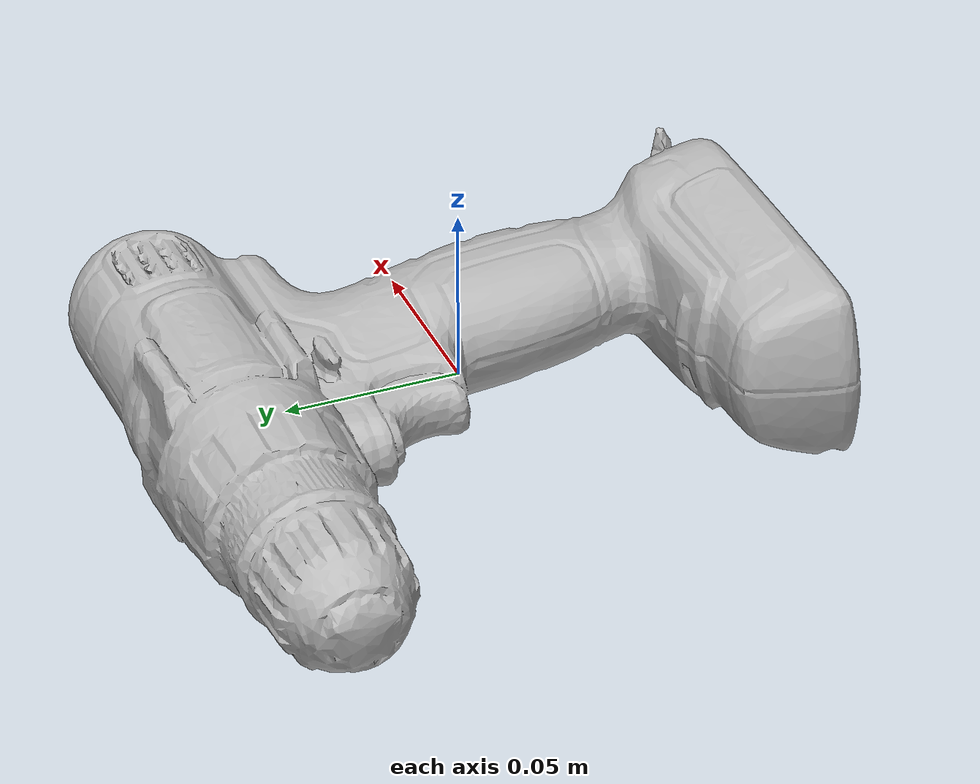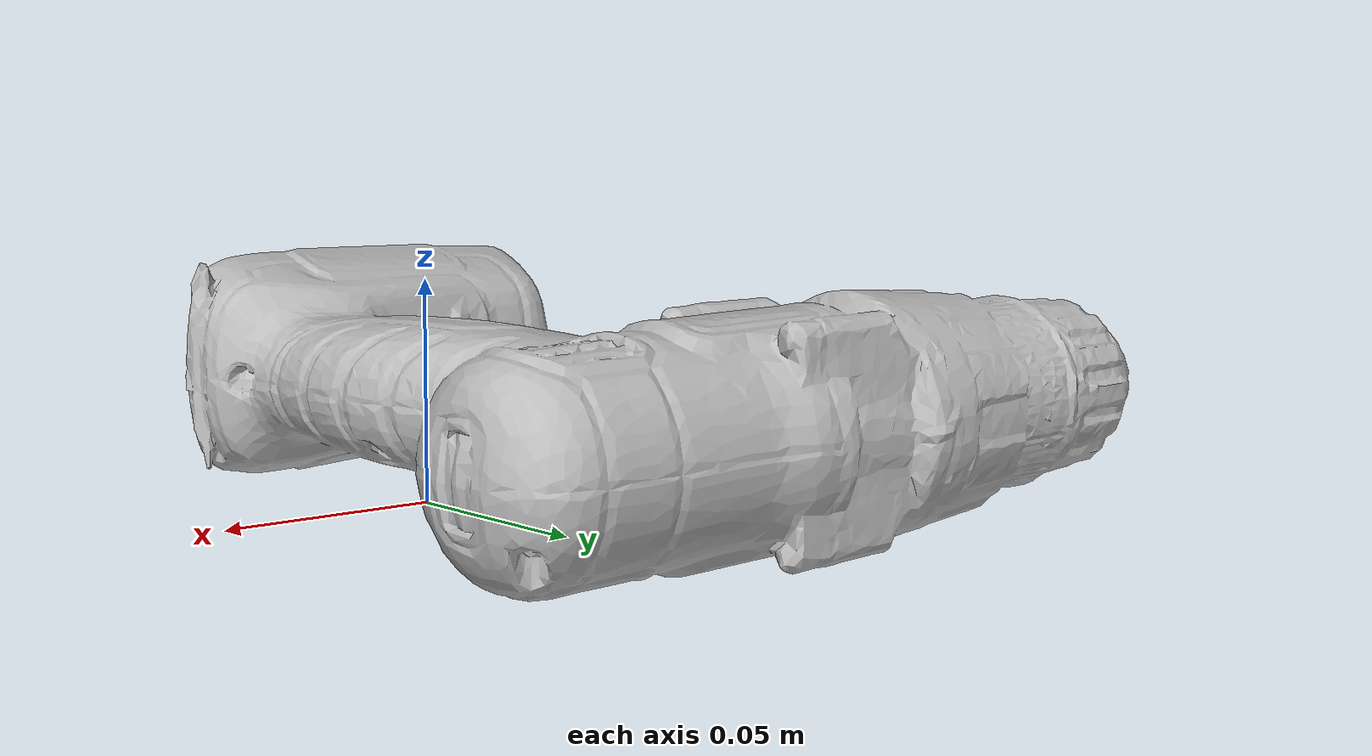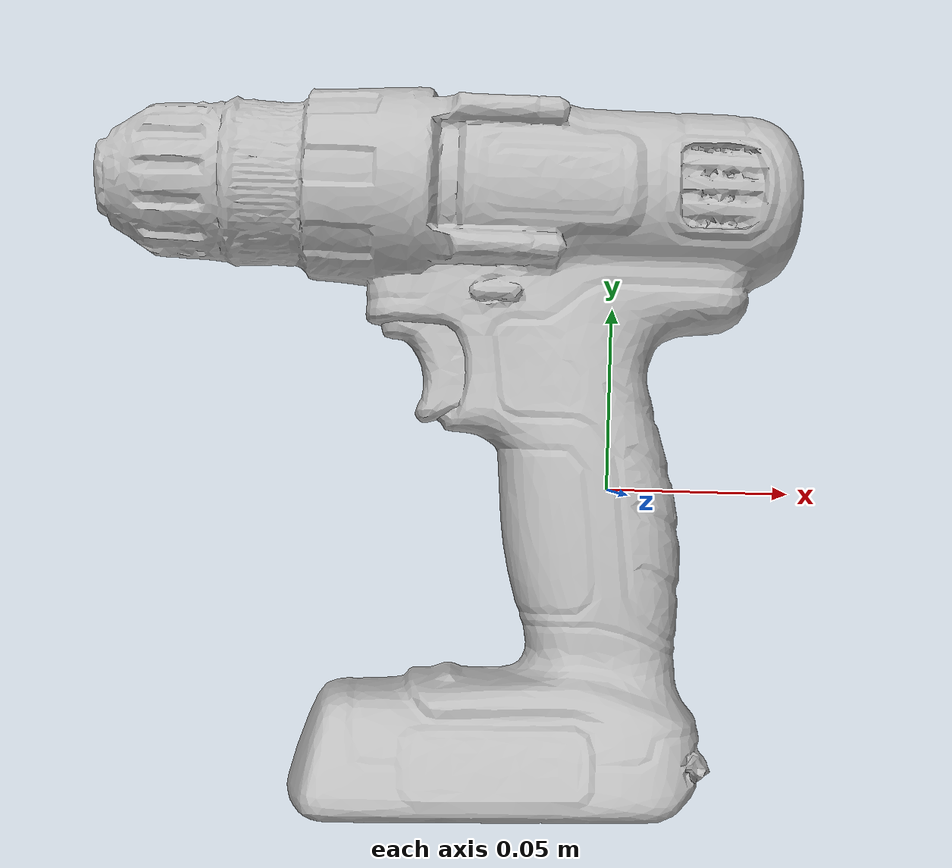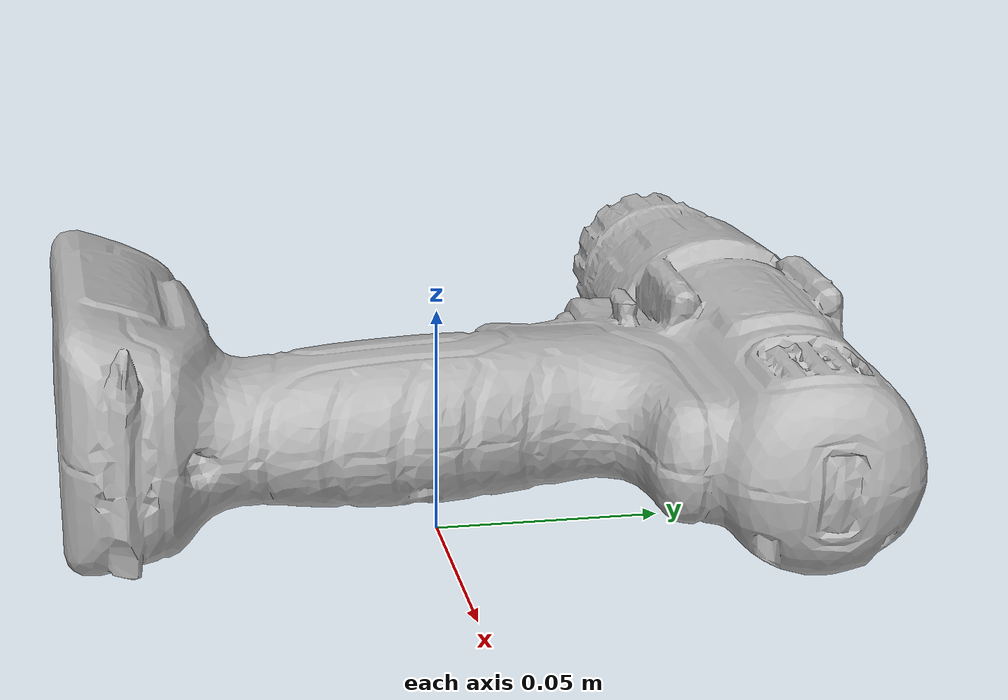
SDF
<?xml version='1.0'?>
<sdf version="1.4">
  <model name="power_drill">
    <static>false</static>
    <link name="link">
      <inertial>
        <pose>-0.0307146912553375 0.02435084573028549 0.023567633989684204 -2.0861491179896197 -1.5309771458518984 0.6822464871470086</pose>
        <mass>0.0005808968085666662</mass>
        <inertia>
          <ixx>3.1058012590273503e-06</ixx>
          <ixy>-4.3027095484207374e-23</ixy>
          <ixz>-3.034672493365148e-22</ixz>
          <iyy>2.3564289011284853e-06</iyy>
          <iyz>-7.045478291702521e-23</iyz>
          <izz>9.038816388046972e-07</izz>
        </inertia>
      </inertial>
      <collision name="collision">
        <geometry>
          <mesh>
            <!-- Use a downsampled mesh for collisions -->
            <uri>model://035_power_drill/google_16k/035_power_drill.obj</uri>
            </mesh>
        </geometry>
        <surface>
          <friction>
            <ode>
              <mu>0.9</mu>
              <mu2>0.9</mu2>
            </ode>
          </friction>
          <contact>
            <ode>
              <kp>1000000000000.0</kp>
              <kd>1</kd>
              <min_depth>0.0001</min_depth>
              <max_vel>0.01</max_vel>
            </ode>
          </contact>
          <bounce>
            <restitution_coefficient>0.1</restitution_coefficient>
            <threshold>1000.0</threshold>
          </bounce>
        </surface>
      </collision>
      <visual name="visual">
        <geometry>
          <mesh>
            <uri>model://035_power_drill/google_16k/035_power_drill.dae</uri>
            </mesh>
        </geometry>
      </visual>
    </link>
  </model>
</sdf>
